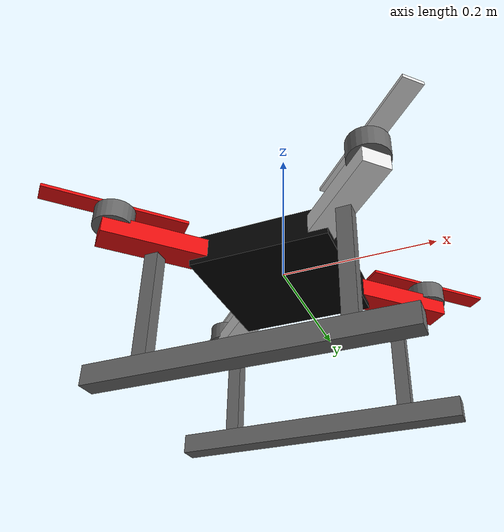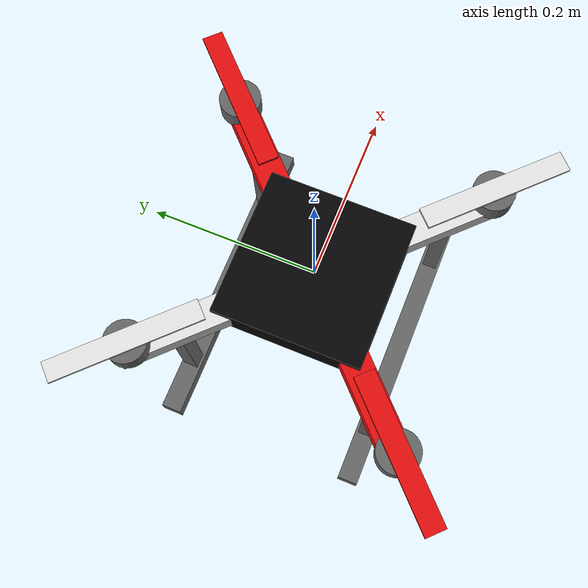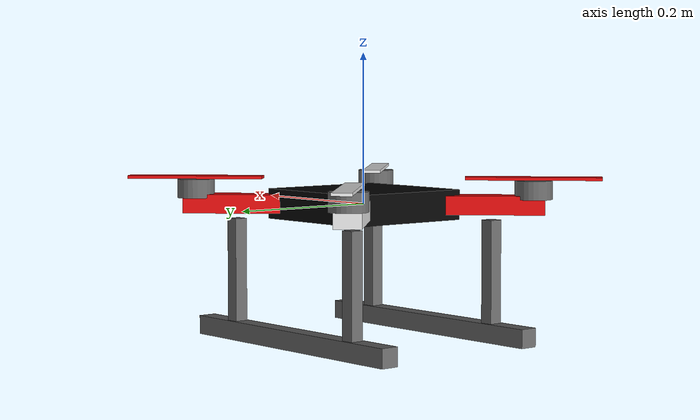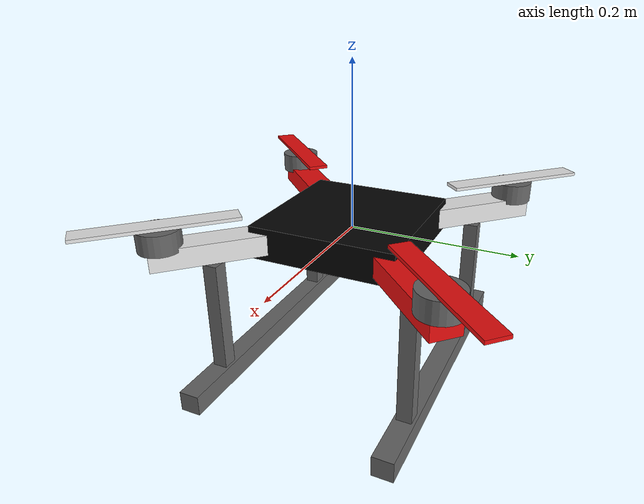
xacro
<?xml version="1.0"?>
<robot name="f450_simple" xmlns:xacro="http://www.ros.org/wiki/xacro">

  <!-- Parameters -->

  <!-- Tổng khối lượng drone, chỉnh theo drone thật sau -->
  <xacro:property name="mass" value="1.5"/>

  <!-- F450: khoảng cách chéo motor-motor khoảng 0.45 m -->
  <!-- arm_xy = 0.45 / (2*sqrt(2)) ≈ 0.159 -->
  <xacro:property name="arm_xy" value="0.159"/>

  <!-- Kích thước mô hình đơn giản -->
  <xacro:property name="body_size_x" value="0.18"/>
  <xacro:property name="body_size_y" value="0.18"/>
  <xacro:property name="body_size_z" value="0.04"/>

  <xacro:property name="arm_length" value="0.48"/>
  <xacro:property name="arm_width" value="0.035"/>
  <xacro:property name="arm_height" value="0.025"/>

  <xacro:property name="motor_radius" value="0.025"/>
  <xacro:property name="motor_height" value="0.025"/>
  <xacro:property name="motor_frame_z" value="0.04"/>

  <xacro:property name="prop_length" value="0.18"/>
  <xacro:property name="prop_width" value="0.025"/>
  <xacro:property name="prop_height" value="0.004"/>
  <xacro:property name="propeller_z" value="0.035"/>
  <xacro:property name="propeller_motor_offset_z" value="${propeller_z - motor_frame_z}"/>

  <!-- Materials -->

  <material name="black">
    <color rgba="0.02 0.02 0.02 1.0"/>
  </material>

  <material name="red">
    <color rgba="0.9 0.05 0.05 1.0"/>
  </material>

  <material name="white">
    <color rgba="0.9 0.9 0.9 1.0"/>
  </material>

  <material name="gray">
    <color rgba="0.4 0.4 0.4 1.0"/>
  </material>

  <!-- Physical propeller macro -->

  <xacro:macro name="physical_propeller" params="idx yaw mat">

    <link name="propeller_${idx}_link">

      <!-- Một cánh quạt -->
      <visual>
        <origin xyz="0 0 0" rpy="0 0 ${yaw}"/>
        <geometry>
          <box size="${prop_length} ${prop_width} ${prop_height}"/>
        </geometry>
        <material name="${mat}"/>
      </visual>

      <!-- Inertia nhỏ cho propeller -->
      <inertial>
        <origin xyz="0 0 0" rpy="0 0 0"/>
        <mass value="0.012"/>
        <inertia
          ixx="0.000001"
          ixy="0.0"
          ixz="0.0"
          iyy="0.000032"
          iyz="0.0"
          izz="0.000032"/>
      </inertial>

    </link>

    <joint name="propeller_${idx}_joint" type="continuous">
      <parent link="motor_${idx}_link"/>
      <child link="propeller_${idx}_link"/>
      <origin xyz="0 0 ${propeller_motor_offset_z}" rpy="0 0 0"/>
      <axis xyz="0 0 1"/>
      <dynamics damping="0.0001" friction="0.0"/>
    </joint>

  </xacro:macro>

  <!-- Base link: toàn bộ thân drone là 1 rigid body -->

  <link name="base_link">

    <!-- Thân giữa -->
    <visual>
      <origin xyz="0 0 0" rpy="0 0 0"/>
      <geometry>
        <box size="${body_size_x} ${body_size_y} ${body_size_z}"/>
      </geometry>
      <material name="black"/>
    </visual>

    <collision>
      <origin xyz="0 0 0" rpy="0 0 0"/>
      <geometry>
        <box size="${body_size_x} ${body_size_y} ${body_size_z}"/>
      </geometry>
    </collision>

    <!-- Tay drone đường chéo 1 -->
    <visual>
      <origin xyz="0 0 0" rpy="0 0 0.785398"/>
      <geometry>
        <box size="${arm_length} ${arm_width} ${arm_height}"/>
      </geometry>
      <material name="red"/>
    </visual>

    <collision>
      <origin xyz="0 0 0" rpy="0 0 0.785398"/>
      <geometry>
        <box size="${arm_length} ${arm_width} ${arm_height}"/>
      </geometry>
    </collision>

    <!-- Tay drone đường chéo 2 -->
    <visual>
      <origin xyz="0 0 0" rpy="0 0 -0.785398"/>
      <geometry>
        <box size="${arm_length} ${arm_width} ${arm_height}"/>
      </geometry>
      <material name="white"/>
    </visual>

    <collision>
      <origin xyz="0 0 0" rpy="0 0 -0.785398"/>
      <geometry>
        <box size="${arm_length} ${arm_width} ${arm_height}"/>
      </geometry>
    </collision>

    <!-- Motor 1: front left -->
    <visual>
      <origin xyz="${arm_xy} ${arm_xy} 0.02" rpy="0 0 0"/>
      <geometry>
        <cylinder radius="${motor_radius}" length="${motor_height}"/>
      </geometry>
      <material name="gray"/>
    </visual>

    <!-- Motor 2: front right -->
    <visual>
      <origin xyz="${arm_xy} -${arm_xy} 0.02" rpy="0 0 0"/>
      <geometry>
        <cylinder radius="${motor_radius}" length="${motor_height}"/>
      </geometry>
      <material name="gray"/>
    </visual>

    <!-- Motor 3: rear right -->
    <visual>
      <origin xyz="-${arm_xy} -${arm_xy} 0.02" rpy="0 0 0"/>
      <geometry>
        <cylinder radius="${motor_radius}" length="${motor_height}"/>
      </geometry>
      <material name="gray"/>
    </visual>

    <!-- Motor 4: rear left -->
    <visual>
      <origin xyz="-${arm_xy} ${arm_xy} 0.02" rpy="0 0 0"/>
      <geometry>
        <cylinder radius="${motor_radius}" length="${motor_height}"/>
      </geometry>
      <material name="gray"/>
    </visual>

    <!-- Landing gear / càng đáp -->

    <!-- Skid trái -->
    <visual>
      <origin xyz="0 0.12 -0.17" rpy="0 0 0"/>
      <geometry>
        <box size="0.38 0.025 0.025"/>
      </geometry>
      <material name="gray"/>
    </visual>

    <collision>
      <origin xyz="0 0.12 -0.17" rpy="0 0 0"/>
      <geometry>
        <box size="0.38 0.025 0.025"/>
      </geometry>
    </collision>

    <!-- Skid phải -->
    <visual>
      <origin xyz="0 -0.12 -0.17" rpy="0 0 0"/>
      <geometry>
        <box size="0.38 0.025 0.025"/>
      </geometry>
      <material name="gray"/>
    </visual>

    <collision>
      <origin xyz="0 -0.12 -0.17" rpy="0 0 0"/>
      <geometry>
        <box size="0.38 0.025 0.025"/>
      </geometry>
    </collision>

    <!-- 4 thanh chống càng đáp -->
    <visual>
      <origin xyz="0.12 0.12 -0.095" rpy="0 0 0"/>
      <geometry>
        <box size="0.018 0.018 0.15"/>
      </geometry>
      <material name="gray"/>
    </visual>

    <collision>
      <origin xyz="0.12 0.12 -0.095" rpy="0 0 0"/>
      <geometry>
        <box size="0.018 0.018 0.15"/>
      </geometry>
    </collision>

    <visual>
      <origin xyz="-0.12 0.12 -0.095" rpy="0 0 0"/>
      <geometry>
        <box size="0.018 0.018 0.15"/>
      </geometry>
      <material name="gray"/>
    </visual>

    <collision>
      <origin xyz="-0.12 0.12 -0.095" rpy="0 0 0"/>
      <geometry>
        <box size="0.018 0.018 0.15"/>
      </geometry>
    </collision>

    <visual>
      <origin xyz="0.12 -0.12 -0.095" rpy="0 0 0"/>
      <geometry>
        <box size="0.018 0.018 0.15"/>
      </geometry>
      <material name="gray"/>
    </visual>

    <collision>
      <origin xyz="0.12 -0.12 -0.095" rpy="0 0 0"/>
      <geometry>
        <box size="0.018 0.018 0.15"/>
      </geometry>
    </collision>

    <visual>
      <origin xyz="-0.12 -0.12 -0.095" rpy="0 0 0"/>
      <geometry>
        <box size="0.018 0.018 0.15"/>
      </geometry>
      <material name="gray"/>
    </visual>

    <collision>
      <origin xyz="-0.12 -0.12 -0.095" rpy="0 0 0"/>
      <geometry>
        <box size="0.018 0.018 0.15"/>
      </geometry>
    </collision>

    <!-- Inertial của toàn bộ drone -->
    <inertial>
      <origin xyz="0 0 0" rpy="0 0 0"/>
      <mass value="${mass}"/>
      <inertia
        ixx="0.03" ixy="0.0" ixz="0.0"
        iyy="0.03" iyz="0.0"
        izz="0.06"/>
    </inertial>

  </link>

  <!-- Motor frames -->
  <!-- Các link này dùng làm vị trí apply force sau này -->

  <link name="motor_1_link"/>
  <link name="motor_2_link"/>
  <link name="motor_3_link"/>
  <link name="motor_4_link"/>

  <joint name="motor_1_joint" type="fixed">
    <parent link="base_link"/>
    <child link="motor_1_link"/>
    <origin xyz="${arm_xy} ${arm_xy} ${motor_frame_z}" rpy="0 0 0"/>
  </joint>

  <joint name="motor_2_joint" type="fixed">
    <parent link="base_link"/>
    <child link="motor_2_link"/>
    <origin xyz="${arm_xy} -${arm_xy} ${motor_frame_z}" rpy="0 0 0"/>
  </joint>

  <joint name="motor_3_joint" type="fixed">
    <parent link="base_link"/>
    <child link="motor_3_link"/>
    <origin xyz="-${arm_xy} -${arm_xy} ${motor_frame_z}" rpy="0 0 0"/>
  </joint>

  <joint name="motor_4_joint" type="fixed">
    <parent link="base_link"/>
    <child link="motor_4_link"/>
    <origin xyz="-${arm_xy} ${arm_xy} ${motor_frame_z}" rpy="0 0 0"/>
  </joint>

  <!-- Sensor frames -->

  <link name="imu_link"/>

  <joint name="imu_joint" type="fixed">
    <parent link="base_link"/>
    <child link="imu_link"/>
    <origin xyz="0 0 0.02" rpy="0 0 0"/>
  </joint>

  <link name="camera_link"/>

  <joint name="camera_joint" type="fixed">
    <parent link="base_link"/>
    <child link="camera_link"/>
    <origin xyz="0.08 0 -0.03" rpy="0 0 0"/>
  </joint>

  <!-- 4 physical propellers -->

  <xacro:physical_propeller
    idx="1"
    yaw="0.785398"
    mat="red"/>

  <xacro:physical_propeller
    idx="2"
    yaw="-0.785398"
    mat="white"/>

  <xacro:physical_propeller
    idx="3"
    yaw="0.785398"
    mat="red"/>

  <xacro:physical_propeller
    idx="4"
    yaw="-0.785398"
    mat="white"/>

</robot>
